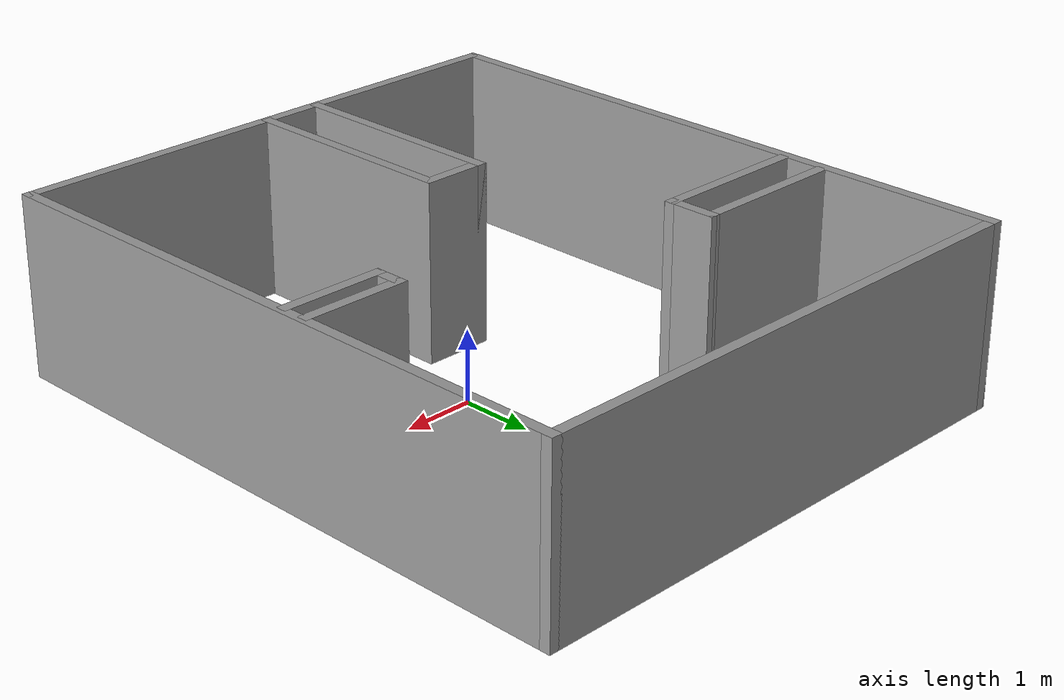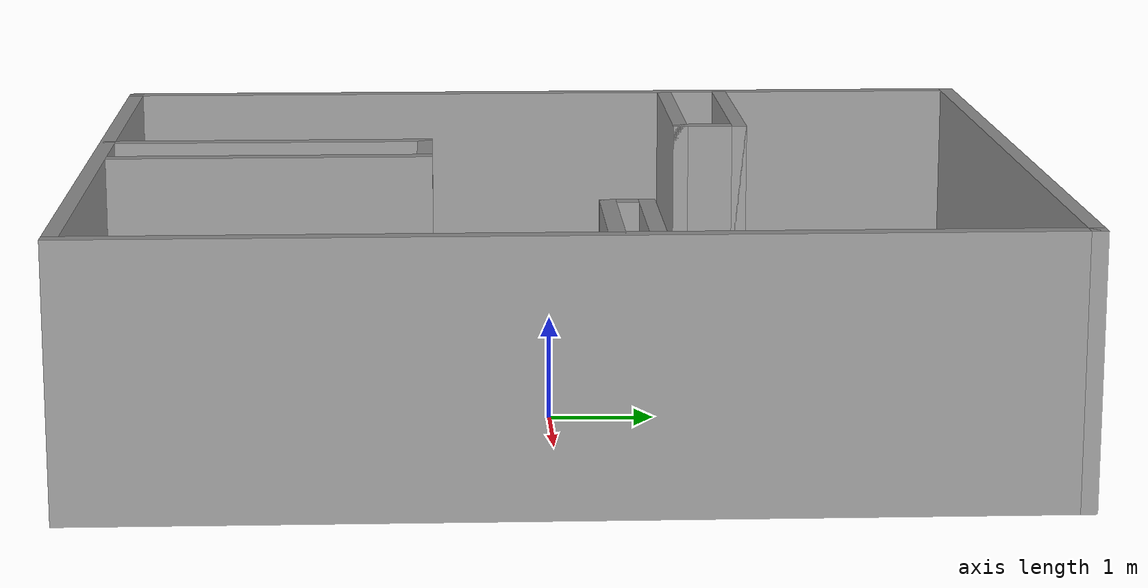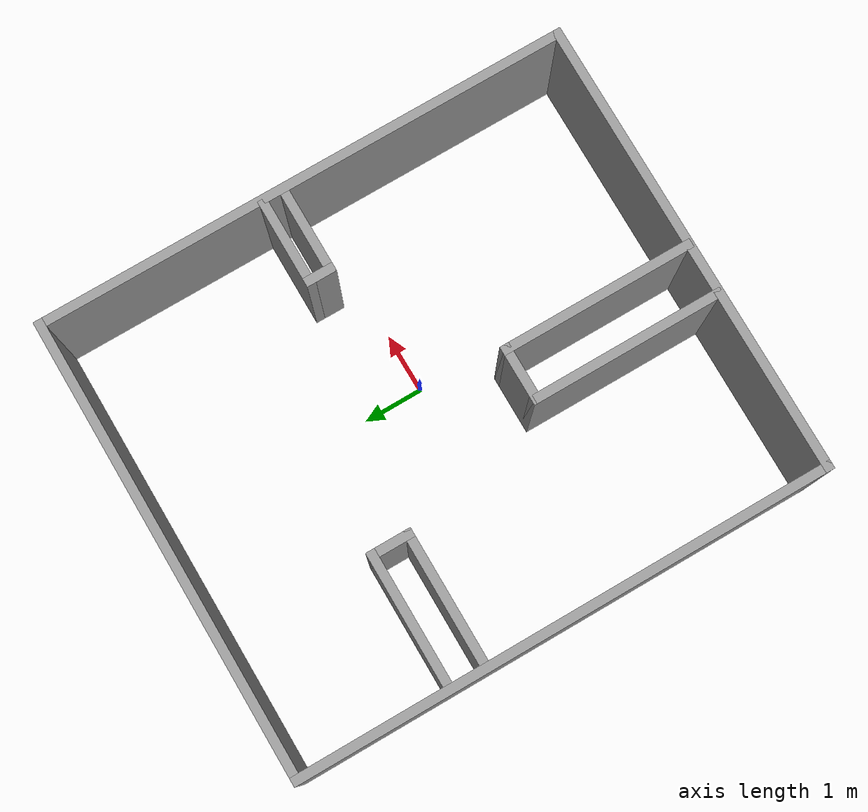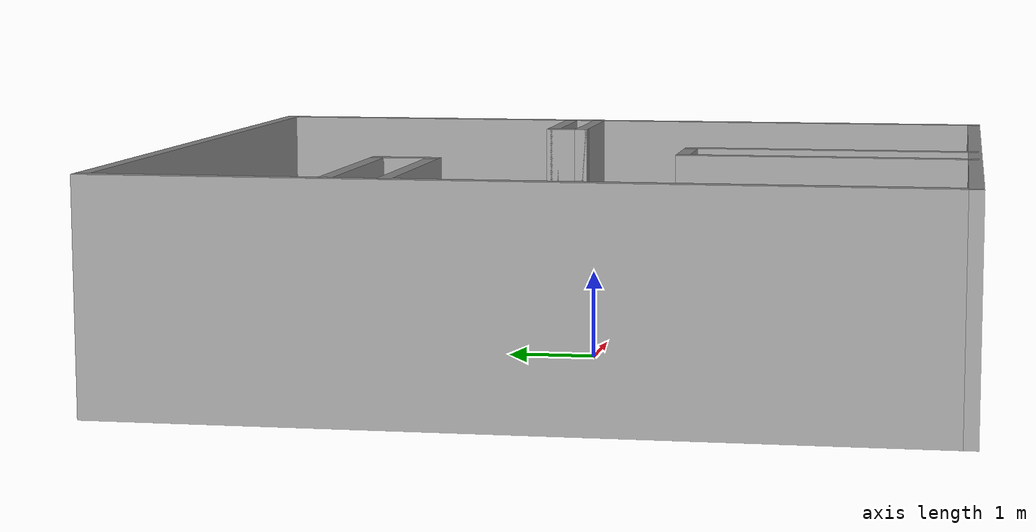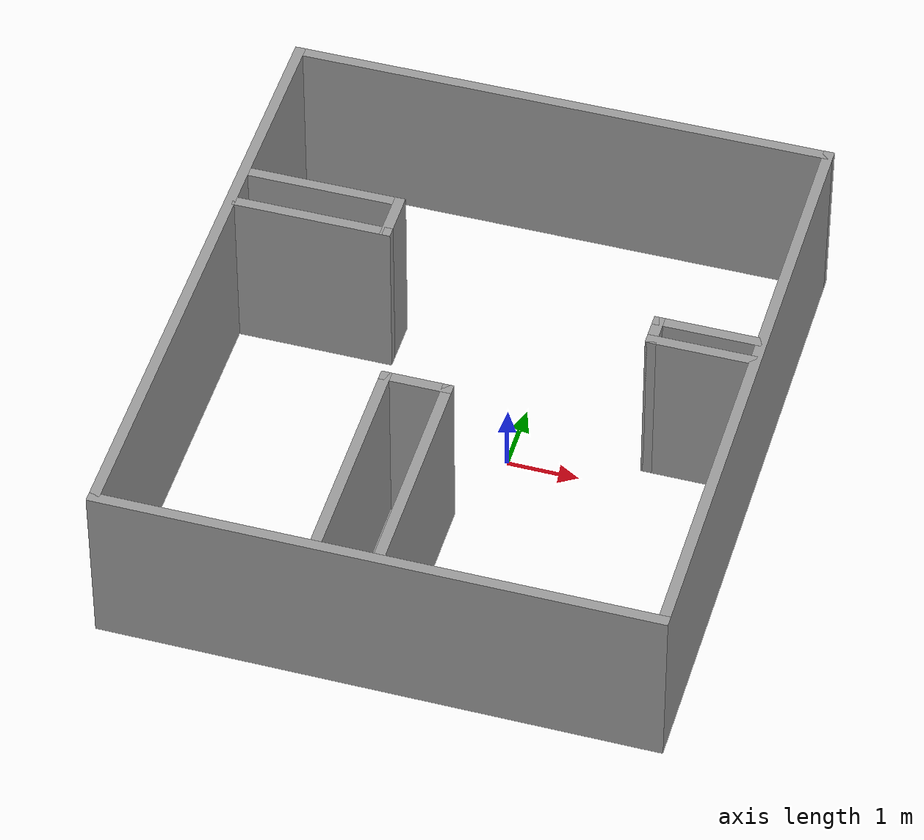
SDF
<?xml version='1.0'?>
<sdf version='1.6'>
  <model name='b2'>
    <pose frame=''>-0.533 0.1085 0 0 -0 0</pose>
    <link name='Wall_11'>
      <collision name='Wall_11_Collision'>
        <geometry>
          <box>
            <size>7.75 0.15 2.5</size>
          </box>
        </geometry>
        <pose frame=''>0 0 1.25 0 -0 0</pose>
      </collision>
      <visual name='Wall_11_Visual'>
        <pose frame=''>0 0 1.25 0 -0 0</pose>
        <geometry>
          <box>
            <size>7.75 0.15 2.5</size>
          </box>
        </geometry>
        <material>
          <script>
            <uri>file://media/materials/scripts/gazebo.material</uri>
            <name>Gazebo/Grey</name>
          </script>
          <ambient>1 1 1 1</ambient>
        </material>
        <meta>
          <layer>0</layer>
        </meta>
      </visual>
      <pose frame=''>0 4.425 0 0 -0 0</pose>
    </link>
    <link name='Wall_13'>
      <collision name='Wall_13_Collision'>
        <geometry>
          <box>
            <size>2.25 0.15 2.5</size>
          </box>
        </geometry>
        <pose frame=''>0 0 1.25 0 -0 0</pose>
      </collision>
      <visual name='Wall_13_Visual'>
        <pose frame=''>0 0 1.25 0 -0 0</pose>
        <geometry>
          <box>
            <size>2.25 0.15 2.5</size>
          </box>
        </geometry>
        <material>
          <script>
            <uri>file://media/materials/scripts/gazebo.material</uri>
            <name>Gazebo/Grey</name>
          </script>
          <ambient>1 1 1 1</ambient>
        </material>
        <meta>
          <layer>0</layer>
        </meta>
      </visual>
      <pose frame=''>-2.63908 1.91197 0 0 -0 0</pose>
    </link>
    <link name='Wall_14'>
      <collision name='Wall_14_Collision'>
        <geometry>
          <box>
            <size>0.75 0.15 2.5</size>
          </box>
        </geometry>
        <pose frame=''>0 0 1.25 0 -0 0</pose>
      </collision>
      <visual name='Wall_14_Visual'>
        <pose frame=''>0 0 1.25 0 -0 0</pose>
        <geometry>
          <box>
            <size>0.75 0.15 2.5</size>
          </box>
        </geometry>
        <material>
          <script>
            <uri>file://media/materials/scripts/gazebo.material</uri>
            <name>Gazebo/Grey</name>
          </script>
          <ambient>1 1 1 1</ambient>
        </material>
        <meta>
          <layer>0</layer>
        </meta>
      </visual>
      <pose frame=''>-1.58908 1.61197 0 0 0 -1.5708</pose>
    </link>
    <link name='Wall_15'>
      <collision name='Wall_15_Collision'>
        <geometry>
          <box>
            <size>2.25 0.15 2.5</size>
          </box>
        </geometry>
        <pose frame=''>0 0 1.25 0 -0 0</pose>
      </collision>
      <visual name='Wall_15_Visual'>
        <pose frame=''>0 0 1.25 0 -0 0</pose>
        <geometry>
          <box>
            <size>2.25 0.15 2.5</size>
          </box>
        </geometry>
        <material>
          <script>
            <uri>file://media/materials/scripts/gazebo.material</uri>
            <name>Gazebo/Grey</name>
          </script>
          <ambient>1 1 1 1</ambient>
        </material>
        <meta>
          <layer>0</layer>
        </meta>
      </visual>
      <pose frame=''>-2.63908 1.31197 0 0 -0 3.14159</pose>
    </link>
    <link name='Wall_21'>
      <collision name='Wall_21_Collision'>
        <geometry>
          <box>
            <size>3.25 0.15 2.5</size>
          </box>
        </geometry>
        <pose frame=''>0 0 1.25 0 -0 0</pose>
      </collision>
      <visual name='Wall_21_Visual'>
        <pose frame=''>0 0 1.25 0 -0 0</pose>
        <geometry>
          <box>
            <size>3.25 0.15 2.5</size>
          </box>
        </geometry>
        <material>
          <script>
            <uri>file://media/materials/scripts/gazebo.material</uri>
            <name>Gazebo/Grey</name>
          </script>
          <ambient>1 1 1 1</ambient>
        </material>
        <meta>
          <layer>0</layer>
        </meta>
      </visual>
      <pose frame=''>-0.815476 -2.84206 0 0 -0 1.5708</pose>
    </link>
    <link name='Wall_22'>
      <collision name='Wall_22_Collision'>
        <geometry>
          <box>
            <size>1 0.15 2.5</size>
          </box>
        </geometry>
        <pose frame=''>0 0 1.25 0 -0 0</pose>
      </collision>
      <visual name='Wall_22_Visual'>
        <pose frame=''>0 0 1.25 0 -0 0</pose>
        <geometry>
          <box>
            <size>1 0.15 2.5</size>
          </box>
        </geometry>
        <material>
          <script>
            <uri>file://media/materials/scripts/gazebo.material</uri>
            <name>Gazebo/Grey</name>
          </script>
          <ambient>1 1 1 1</ambient>
        </material>
        <meta>
          <layer>0</layer>
        </meta>
      </visual>
      <pose frame=''>-0.390476 -1.29206 0 0 -0 0</pose>
    </link>
    <link name='Wall_23'>
      <collision name='Wall_23_Collision'>
        <geometry>
          <box>
            <size>3.25 0.15 2.5</size>
          </box>
        </geometry>
        <pose frame=''>0 0 1.25 0 -0 0</pose>
      </collision>
      <visual name='Wall_23_Visual'>
        <pose frame=''>0 0 1.25 0 -0 0</pose>
        <geometry>
          <box>
            <size>3.25 0.15 2.5</size>
          </box>
        </geometry>
        <material>
          <script>
            <uri>file://media/materials/scripts/gazebo.material</uri>
            <name>Gazebo/Grey</name>
          </script>
          <ambient>1 1 1 1</ambient>
        </material>
        <meta>
          <layer>0</layer>
        </meta>
      </visual>
      <pose frame=''>0.034524 -2.84206 0 0 0 -1.5708</pose>
    </link>
    <link name='Wall_25'>
      <collision name='Wall_25_Collision'>
        <geometry>
          <box>
            <size>1.5 0.15 2.5</size>
          </box>
        </geometry>
        <pose frame=''>0 0 1.25 0 -0 0</pose>
      </collision>
      <visual name='Wall_25_Visual'>
        <pose frame=''>0 0 1.25 0 -0 0</pose>
        <geometry>
          <box>
            <size>1.5 0.15 2.5</size>
          </box>
        </geometry>
        <material>
          <script>
            <uri>file://media/materials/scripts/gazebo.material</uri>
            <name>Gazebo/Grey</name>
          </script>
          <ambient>1 1 1 1</ambient>
        </material>
        <meta>
          <layer>0</layer>
        </meta>
      </visual>
      <pose frame=''>3.05816 0.688579 0 0 -0 3.14159</pose>
    </link>
    <link name='Wall_29'>
      <collision name='Wall_29_Collision'>
        <geometry>
          <box>
            <size>0.5 0.15 2.5</size>
          </box>
        </geometry>
        <pose frame=''>0 0 1.25 0 -0 0</pose>
      </collision>
      <visual name='Wall_29_Visual'>
        <pose frame=''>0 0 1.25 0 -0 0</pose>
        <geometry>
          <box>
            <size>0.5 0.15 2.5</size>
          </box>
        </geometry>
        <material>
          <script>
            <uri>file://media/materials/scripts/gazebo.material</uri>
            <name>Gazebo/Grey</name>
          </script>
          <ambient>1 1 1 1</ambient>
        </material>
        <meta>
          <layer>0</layer>
        </meta>
      </visual>
      <pose frame=''>2.38316 0.513579 0 0 0 -1.5708</pose>
    </link>
    <link name='Wall_3'>
      <collision name='Wall_3_Collision'>
        <geometry>
          <box>
            <size>7.75 0.15 2.5</size>
          </box>
        </geometry>
        <pose frame=''>0 0 1.25 0 -0 0</pose>
      </collision>
      <visual name='Wall_3_Visual'>
        <pose frame=''>0 0 1.25 0 -0 0</pose>
        <geometry>
          <box>
            <size>7.75 0.15 2.5</size>
          </box>
        </geometry>
        <material>
          <script>
            <uri>file://media/materials/scripts/gazebo.material</uri>
            <name>Gazebo/Grey</name>
          </script>
          <ambient>1 1 1 1</ambient>
        </material>
        <meta>
          <layer>0</layer>
        </meta>
      </visual>
      <pose frame=''>0 -4.425 0 0 -0 0</pose>
    </link>
    <link name='Wall_30'>
      <collision name='Wall_30_Collision'>
        <geometry>
          <box>
            <size>1.5 0.15 2.5</size>
          </box>
        </geometry>
        <pose frame=''>0 0 1.25 0 -0 0</pose>
      </collision>
      <visual name='Wall_30_Visual'>
        <pose frame=''>0 0 1.25 0 -0 0</pose>
        <geometry>
          <box>
            <size>1.5 0.15 2.5</size>
          </box>
        </geometry>
        <material>
          <script>
            <uri>file://media/materials/scripts/gazebo.material</uri>
            <name>Gazebo/Grey</name>
          </script>
          <ambient>1 1 1 1</ambient>
        </material>
        <meta>
          <layer>0</layer>
        </meta>
      </visual>
      <pose frame=''>3.05816 0.338579 0 0 -0 0</pose>
    </link>
    <link name='Wall_7'>
      <collision name='Wall_7_Collision'>
        <geometry>
          <box>
            <size>9 0.15 2.5</size>
          </box>
        </geometry>
        <pose frame=''>0 0 1.25 0 -0 0</pose>
      </collision>
      <visual name='Wall_7_Visual'>
        <pose frame=''>0 0 1.25 0 -0 0</pose>
        <geometry>
          <box>
            <size>9 0.15 2.5</size>
          </box>
        </geometry>
        <material>
          <script>
            <uri>file://media/materials/scripts/gazebo.material</uri>
            <name>Gazebo/Grey</name>
          </script>
          <ambient>1 1 1 1</ambient>
        </material>
        <meta>
          <layer>0</layer>
        </meta>
      </visual>
      <pose frame=''>3.8 0 0 0 -0 1.5708</pose>
    </link>
    <link name='Wall_9'>
      <collision name='Wall_9_Collision'>
        <geometry>
          <box>
            <size>9 0.15 2.5</size>
          </box>
        </geometry>
        <pose frame=''>0 0 1.25 0 -0 0</pose>
      </collision>
      <visual name='Wall_9_Visual'>
        <pose frame=''>0 0 1.25 0 -0 0</pose>
        <geometry>
          <box>
            <size>9 0.15 2.5</size>
          </box>
        </geometry>
        <material>
          <script>
            <uri>file://media/materials/scripts/gazebo.material</uri>
            <name>Gazebo/Grey</name>
          </script>
          <ambient>1 1 1 1</ambient>
        </material>
        <meta>
          <layer>0</layer>
        </meta>
      </visual>
      <pose frame=''>-3.8 0 0 0 -0 1.5708</pose>
    </link>
    <static>1</static>
  </model>
</sdf>
